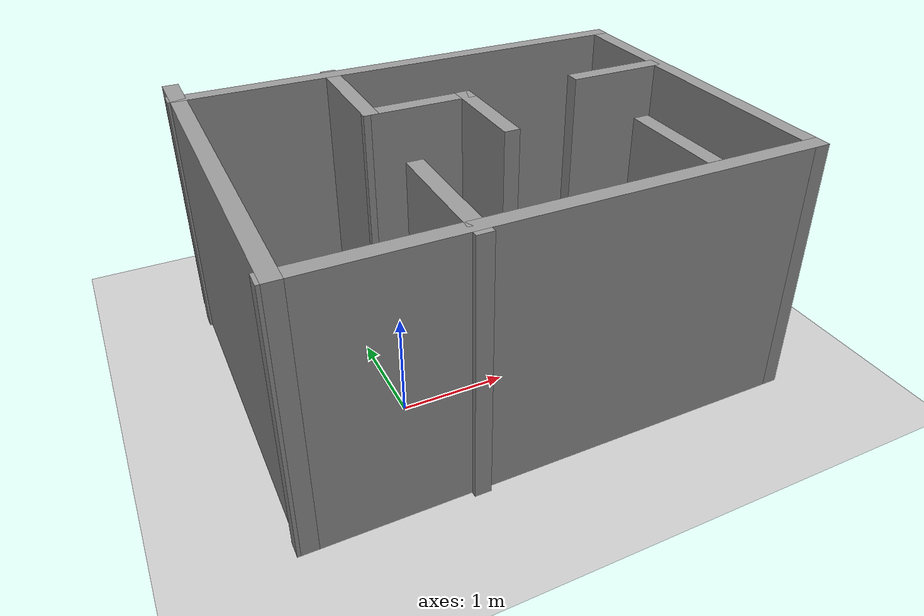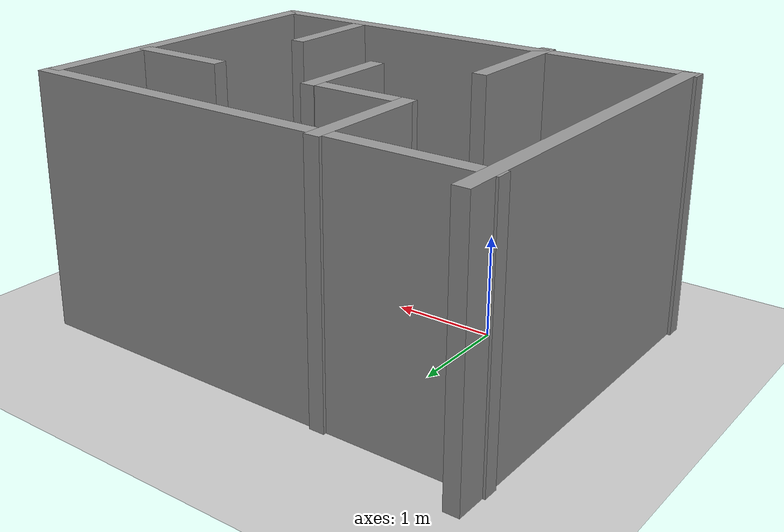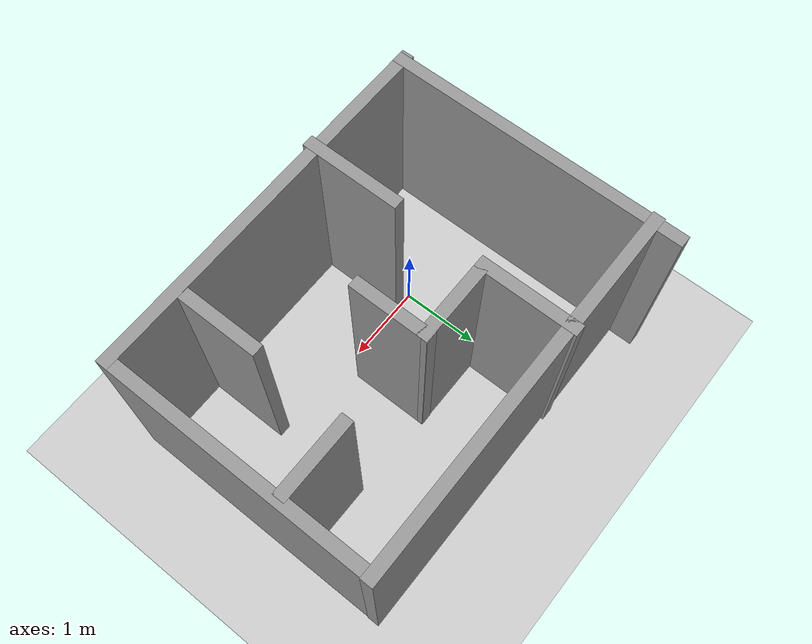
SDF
<sdf version="1.7">
 <world name="default">
  <light name="sun" type="directional">
   <pose>0 0 10 0 -0 0</pose>
   <diffuse>0.8 0.8 0.8 1</diffuse>
   <specular>0.2 0.2 0.2 1</specular>
   <attenuation>
    <range>1000</range>
    <constant>0.9</constant>
    <linear>0.01</linear>
    <quadratic>0.001</quadratic>
   </attenuation>
   <direction>-0.5 0.1 -0.9</direction>
   <spot><inner_angle>0</inner_angle><outer_angle>0</outer_angle><falloff>0</falloff></spot>
  </light>
  <model name="ground_plane">
   <static>1</static>
   <link name="link">
    <collision name="collision">
     <geometry><plane><normal>0 0 1</normal><size>100 100</size></plane></geometry>
     <surface>
      <contact><collide_bitmask>65535</collide_bitmask></contact>
      <friction><ode><mu>100</mu><mu2>50</mu2></ode></friction>
     </surface>
    </collision>
    <visual name="visual">
     <cast_shadows>0</cast_shadows>
     <geometry><plane><normal>0 0 1</normal><size>100 100</size></plane></geometry>
     <material>
      <script><uri>file://media/materials/scripts/gazebo.material</uri><name>Gazebo/Grey</name></script>
     </material>
    </visual>
   </link>
  </model>
  <gravity>0 0 -9.8</gravity>
  <magnetic_field>6e-06 2.3e-05 -4.2e-05</magnetic_field>
  <atmosphere type="adiabatic"/>
  <physics type="ode">
   <max_step_size>0.001</max_step_size>
   <real_time_factor>1</real_time_factor>
   <real_time_update_rate>1000</real_time_update_rate>
  </physics>
  <scene><ambient>0.4 0.4 0.4 1</ambient><background>0.7 0.7 0.7 1</background><shadows>1</shadows></scene>
  <audio><device>default</device></audio>
  <spherical_coordinates>
   <surface_model>EARTH_WGS84</surface_model>
   <latitude_deg>0</latitude_deg>
   <longitude_deg>0</longitude_deg>
   <elevation>0</elevation>
   <heading_deg>0</heading_deg>
  </spherical_coordinates>
  <model name="Untitled">
   <pose>1.00896 0.653354 0 0 -0 0</pose>
   <link name="Wall_12">
    <collision name="Wall_12_Collision">
     <geometry><box><size>1.25 0.15 2.5</size></box></geometry>
     <pose>0 0 1.25 0 -0 0</pose>
    </collision>
    <visual name="Wall_12_Visual">
     <pose>0 0 1.25 0 -0 0</pose>
     <geometry><box><size>1.25 0.15 2.5</size></box></geometry>
     <material>
      <script><uri>file://media/materials/scripts/gazebo.material</uri><name>Gazebo/Grey</name></script>
      <ambient>1 1 1 1</ambient>
     </material>
     <meta><layer>0</layer></meta>
    </visual>
    <pose>-0.797502 1.00012 0 0 -0 -1.5708</pose>
   </link>
   <link name="Wall_14">
    <collision name="Wall_14_Collision">
     <geometry><box><size>1.10724 0.15 2.5</size></box></geometry>
     <pose>0 0 1.25 0 -0 0</pose>
    </collision>
    <visual name="Wall_14_Visual">
     <pose>0 0 1.25 0 -0 0</pose>
     <geometry><box><size>1.10724 0.15 2.5</size></box></geometry>
     <material>
      <script><uri>file://media/materials/scripts/gazebo.material</uri><name>Gazebo/Grey</name></script>
      <ambient>1 1 1 1</ambient>
     </material>
     <meta><layer>0</layer></meta>
    </visual>
    <pose>-0.318883 0.449944 0 0 -0 -0.00036</pose>
   </link>
   <link name="Wall_15">
    <collision name="Wall_15_Collision">
     <geometry><box><size>1 0.15 2.5</size></box></geometry>
     <pose>0 0 1.25 0 -0 0</pose>
    </collision>
    <visual name="Wall_15_Visual">
     <pose>0 0 1.25 0 -0 0</pose>
     <geometry><box><size>1 0.15 2.5</size></box></geometry>
     <material>
      <script><uri>file://media/materials/scripts/gazebo.material</uri><name>Gazebo/Grey</name></script>
      <ambient>1 1 1 1</ambient>
     </material>
     <meta><layer>0</layer></meta>
    </visual>
    <pose>0.159736 0.032333 0 0 -0 -1.5708</pose>
   </link>
   <link name="Wall_17">
    <collision name="Wall_17_Collision">
     <geometry><box><size>1.25 0.15 2.5</size></box></geometry>
     <pose>0 0 1.25 0 -0 0</pose>
    </collision>
    <visual name="Wall_17_Visual">
     <pose>0 0 1.25 0 -0 0</pose>
     <geometry><box><size>1.25 0.15 2.5</size></box></geometry>
     <material>
      <script><uri>file://media/materials/scripts/gazebo.material</uri><name>Gazebo/Grey</name></script>
      <ambient>1 1 1 1</ambient>
     </material>
     <meta><layer>0</layer></meta>
    </visual>
    <pose>-0.816121 -1.27606 0 0 -0 1.5708</pose>
   </link>
   <link name="Wall_2">
    <collision name="Wall_2_Collision">
     <geometry><box><size>3.75 0.15 2.5</size></box></geometry>
     <pose>0 0 1.25 0 -0 0</pose>
    </collision>
    <visual name="Wall_2_Visual">
     <pose>0 0 1.25 0 -0 0</pose>
     <geometry><box><size>3.75 0.15 2.5</size></box></geometry>
     <material>
      <script><uri>file://media/materials/scripts/gazebo.material</uri><name>Gazebo/Grey</name></script>
      <ambient>1 1 1 1</ambient>
     </material>
     <meta><layer>0</layer></meta>
    </visual>
    <pose>-2.27299 0.026056 0 0 -0 1.5708</pose>
   </link>
   <link name="Wall_20">
    <collision name="Wall_20_Collision">
     <geometry><box><size>1 0.15 2.5</size></box></geometry>
     <pose>0 0 1.25 0 -0 0</pose>
    </collision>
    <visual name="Wall_20_Visual">
     <pose>0 0 1.25 0 -0 0</pose>
     <geometry><box><size>1 0.15 2.5</size></box></geometry>
     <material>
      <script><uri>file://media/materials/scripts/gazebo.material</uri><name>Gazebo/Grey</name></script>
      <ambient>1 1 1 1</ambient>
     </material>
     <meta><layer>0</layer></meta>
    </visual>
    <pose>1.79102 0.412129 0 0 -0 3.14159</pose>
   </link>
   <link name="Wall_22">
    <collision name="Wall_22_Collision">
     <geometry><box><size>1 0.15 2.5</size></box></geometry>
     <pose>0 0 1.25 0 -0 0</pose>
    </collision>
    <visual name="Wall_22_Visual">
     <pose>0 0 1.25 0 -0 0</pose>
     <geometry><box><size>1 0.15 2.5</size></box></geometry>
     <material>
      <script><uri>file://media/materials/scripts/gazebo.material</uri><name>Gazebo/Grey</name></script>
      <ambient>1 1 1 1</ambient>
     </material>
     <meta><layer>0</layer></meta>
    </visual>
    <pose>1.3162 -1.1969 0 0 -0 1.5708</pose>
   </link>
   <link name="Wall_4">
    <collision name="Wall_4_Collision">
     <geometry><box><size>4.75 0.15 2.5</size></box></geometry>
     <pose>0 0 1.25 0 -0 0</pose>
    </collision>
    <visual name="Wall_4_Visual">
     <pose>0 0 1.25 0 -0 0</pose>
     <geometry><box><size>4.75 0.15 2.5</size></box></geometry>
     <material>
      <script><uri>file://media/materials/scripts/gazebo.material</uri><name>Gazebo/Grey</name></script>
      <ambient>1 1 1 1</ambient>
     </material>
     <meta><layer>0</layer></meta>
    </visual>
    <pose>-0.003577 -1.77394 0 0 -0 0</pose>
   </link>
   <link name="Wall_6">
    <collision name="Wall_6_Collision">
     <geometry><box><size>3.34177 0.15 2.5</size></box></geometry>
     <pose>0 0 1.25 0 -0 0</pose>
    </collision>
    <visual name="Wall_6_Visual">
     <pose>0 0 1.25 0 -0 0</pose>
     <geometry><box><size>3.34177 0.15 2.5</size></box></geometry>
     <material>
      <script><uri>file://media/materials/scripts/gazebo.material</uri><name>Gazebo/Grey</name></script>
      <ambient>1 1 1 1</ambient>
     </material>
     <meta><layer>0</layer></meta>
    </visual>
    <pose>2.29642 -0.178059 0 0 -0 1.5708</pose>
   </link>
   <link name="Wall_9">
    <collision name="Wall_9_Collision">
     <geometry><box><size>4.75 0.15 2.5</size></box></geometry>
     <pose>0 0 1.25 0 -0 0</pose>
    </collision>
    <visual name="Wall_9_Visual">
     <pose>0 0 1.25 0 -0 0</pose>
     <geometry><box><size>4.75 0.15 2.5</size></box></geometry>
     <material>
      <script><uri>file://media/materials/scripts/gazebo.material</uri><name>Gazebo/Grey</name></script>
      <ambient>1 1 1 1</ambient>
     </material>
     <meta><layer>0</layer></meta>
    </visual>
    <pose>0.003577 1.51953 0 0 -0 0</pose>
   </link>
   <static>1</static>
  </model>
 </world>
</sdf>
